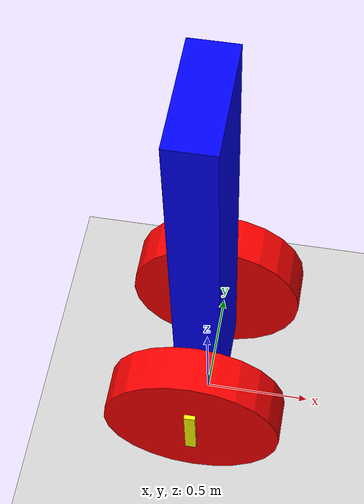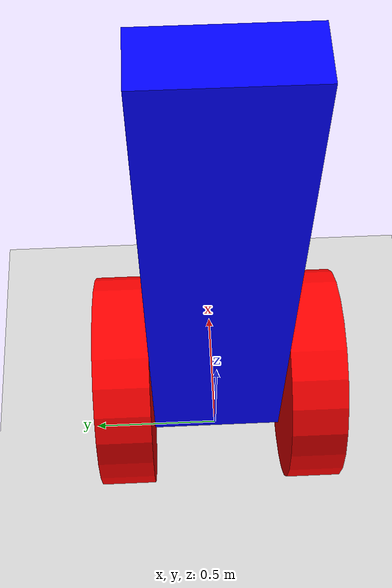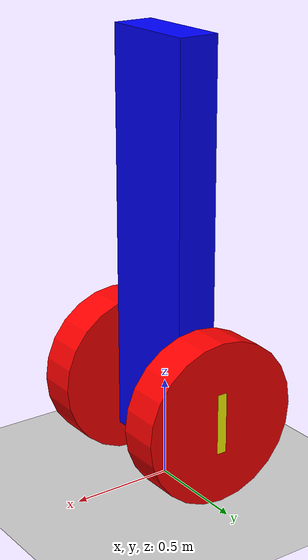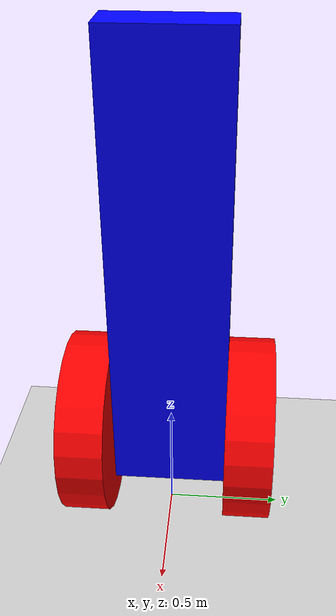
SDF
<?xml version="1.0" ?>
<sdf version="1.10">
    <world name="segway_world">
        <plugin filename="gz-sim-imu-system"
                name="gz::sim::systems::Imu">
        </plugin>
        <plugin filename="gz-sim-contact-system"
                name="gz::sim::systems::Contact">
        </plugin>
        <plugin
            filename="gz-sim-sensors-system"
            name="gz::sim::systems::Sensors">
            <render_engine>ogre2</render_engine>
        </plugin>
        <physics name="1ms" type="ignored">
            <max_step_size>0.001</max_step_size>
            <real_time_factor>1.0</real_time_factor>
        </physics>
        <plugin
            filename="gz-sim-physics-system"
            name="gz::sim::systems::Physics">
        </plugin>
        <plugin
            filename="gz-sim-user-commands-system"
            name="gz::sim::systems::UserCommands">
        </plugin>
        <plugin
            filename="gz-sim-scene-broadcaster-system"
            name="gz::sim::systems::SceneBroadcaster">
        </plugin>

        <light type="directional" name="sun">
            <cast_shadows>true</cast_shadows>
            <pose>0 0 10 0 0 0</pose>
            <diffuse>0.8 0.8 0.8 1</diffuse>
            <specular>0.2 0.2 0.2 1</specular>
            <attenuation>
                <range>1000</range>
                <constant>0.9</constant>
                <linear>0.01</linear>
                <quadratic>0.001</quadratic>
            </attenuation>
            <direction>-0.5 0.1 -0.9</direction>
        </light>

        <model name="ground_plane">
            <static>true</static>
            <link name="link">
                <collision name="collision">
                <geometry>
                    <plane>
                    <normal>0 0 1</normal>
                    </plane>
                </geometry>
                </collision>
                <visual name="visual">
                <geometry>
                    <plane>
                    <normal>0 0 1</normal>
                    <size>100 100</size>
                    </plane>
                </geometry>
                <material>
                    <ambient>0.8 0.8 0.8 1</ambient>
                    <diffuse>0.8 0.8 0.8 1</diffuse>
                    <specular>0.8 0.8 0.8 1</specular>
                </material>
                </visual>
            </link>
        </model>

         <!-- Eigenes Fahrzeug -->
        <include>
            <uri>model://segway</uri>
            <pose>0 0 0.2 0 0.0 0</pose>
        </include>

        <!-- Walls -->

    </world>
</sdf>

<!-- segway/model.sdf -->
<sdf version="1.9">
    <model name='segway' canonical_link='chassis'>

        <link name='chassis'>
            <sensor name="imu_sensor" type="imu">
                <pose>0 0 0 0 0 0</pose>
                <topic>imu</topic>
                <update_rate>100</update_rate>
                <always_on>true</always_on>
            </sensor>
            <pose relative_to='__model__'>0 0 1 0 0 0</pose>

            <inertial auto="true"> <!--inertial properties of the link mass, inertia matix-->
                <mass>1.14395</mass>
            </inertial>

            <visual name='visual'>
                <geometry>
                    <box>
                        <size>0.2 0.5 2.0</size>
                    </box>
                </geometry>
                <!--let's add color to our link-->
                <material>
                    <ambient>0.0 0.0 1.0 1</ambient>
                    <diffuse>0.0 0.0 1.0 1</diffuse>
                    <specular>0.0 0.0 1.0 1</specular>
                </material>
            </visual>
            <collision name='collision'>
                <geometry>
                    <box>
                        <size>0.2 0.5 2.0</size>
                    </box>
                </geometry>
            </collision>
        </link>

        <link name='left_wheel'>
            <pose relative_to="chassis">0.0 0.35 -0.75 -1.5707 0 0</pose>
            <inertial auto="true">
                <mass>1.0</mass>
            </inertial>
            <visual name='visual'>
                <geometry>
                    <cylinder>
                        <radius>0.4</radius>
                        <length>0.2</length>
                    </cylinder>
                </geometry>
                <material>
                    <ambient>1.0 0.0 0.0 1</ambient>
                    <diffuse>1.0 0.0 0.0 1</diffuse>
                    <specular>1.0 0.0 0.0 1</specular>
                </material>
            </visual>
            <visual name="rotation_marker">
                <!-- Marker etwas außerhalb der Radflaeche -->
                <pose>0 0 -0.01 0 0 0</pose>

                <geometry>
                    <box>
                        <size>0.05 0.30 0.22</size>
                    </box>
                </geometry>

                <material>
                    <ambient>1 1 0 1</ambient>
                    <diffuse>1 1 0 1</diffuse>
                </material>
            </visual>
            <collision name='collision'>
                <geometry>
                    <cylinder>
                        <radius>0.4</radius>
                        <length>0.2</length>
                    </cylinder>
                </geometry>
            </collision>
        </link>

        <!--The same as left wheel but with different position-->
        <link name='right_wheel'>
            <pose relative_to="chassis">0.0 -0.35 -0.75 -1.5707 0 0</pose> <!--angles are in radian-->
            <inertial auto="true">
                <mass>1.0</mass>
            </inertial>
            <visual name='visual'>
                <geometry>
                    <cylinder>
                        <radius>0.4</radius>
                        <length>0.2</length>
                    </cylinder>
                </geometry>
                <material>
                    <ambient>1.0 0.0 0.0 1</ambient>
                    <diffuse>1.0 0.0 0.0 1</diffuse>
                    <specular>1.0 0.0 0.0 1</specular>
                </material>
            </visual>
            <visual name="rotation_marker">
                <!-- Marker etwas außerhalb der Radfläche -->
                <pose>0 0 -0.01 0 0 0</pose>

                <geometry>
                    <box>
                        <size>0.05 0.30 0.22</size>
                    </box>
                </geometry>

                <material>
                    <ambient>1 1 0 1</ambient>
                    <diffuse>1 1 0 1</diffuse>
                </material>
            </visual>
            <collision name='collision'>
                <geometry>
                    <cylinder>
                        <radius>0.4</radius>
                        <length>0.2</length>
                    </cylinder>
                </geometry>
            </collision>
        </link>

        <frame name="caster_frame" attached_to='chassis'>
            <pose>0.8 0 -0.2 0 0 0</pose>
        </frame>

        <joint name='left_wheel_joint' type='revolute'>
            <pose relative_to='left_wheel'/>
            <parent>chassis</parent>
            <child>left_wheel</child>
            <axis>
                <xyz expressed_in='__model__'>0 1 0</xyz> <!--can be defined as any frame or even arbitrary frames-->
                <limit>
                    <lower>-1.79769e+308</lower>    <!--negative infinity-->
                    <upper>1.79769e+308</upper>     <!--positive infinity-->
                </limit>
            </axis>
        </joint>

        <joint name='right_wheel_joint' type='revolute'>
            <pose relative_to='right_wheel'/>
            <parent>chassis</parent>
            <child>right_wheel</child>
            <axis>
                <xyz expressed_in='__model__'>0 1 0</xyz>
                <limit>
                    <lower>-1.79769e+308</lower>    <!--negative infinity-->
                    <upper>1.79769e+308</upper>     <!--positive infinity-->
                </limit>
            </axis>
        </joint>

        <plugin
            filename="gz-sim-diff-drive-system"
            name="gz::sim::systems::DiffDrive">
            <left_joint>left_wheel_joint</left_joint>
            <right_joint>right_wheel_joint</right_joint>
            <wheel_separation>0.7</wheel_separation>
            <wheel_radius>0.4</wheel_radius>
            <odom_publish_frequency>1</odom_publish_frequency>
            <topic>cmd_vel</topic>
        </plugin>
    </model>

</sdf>
